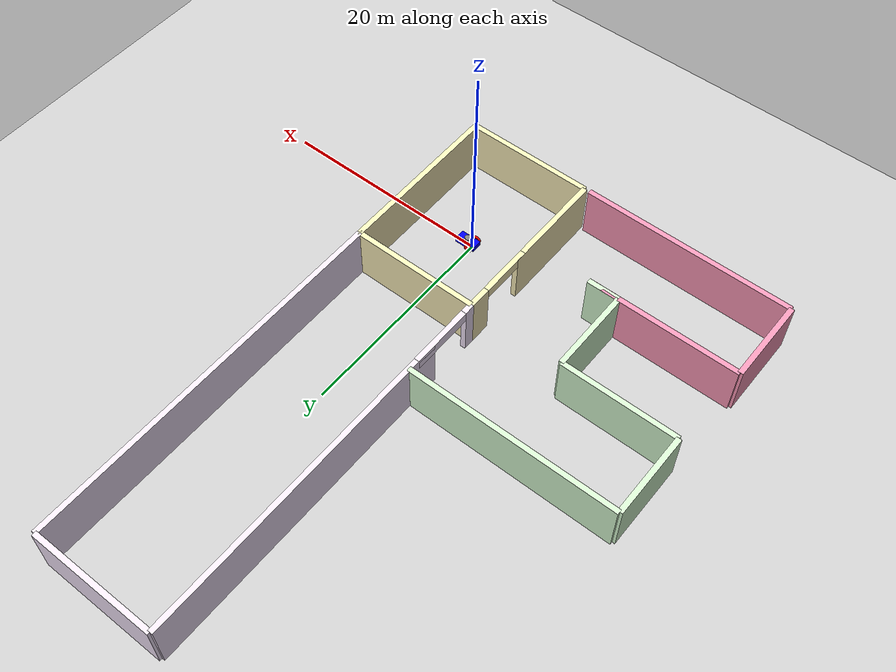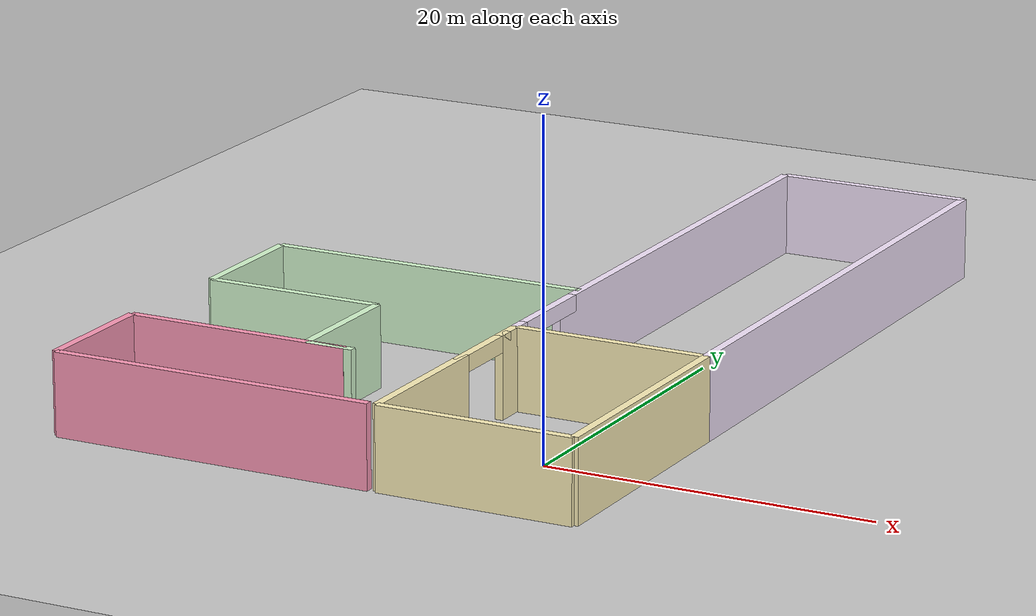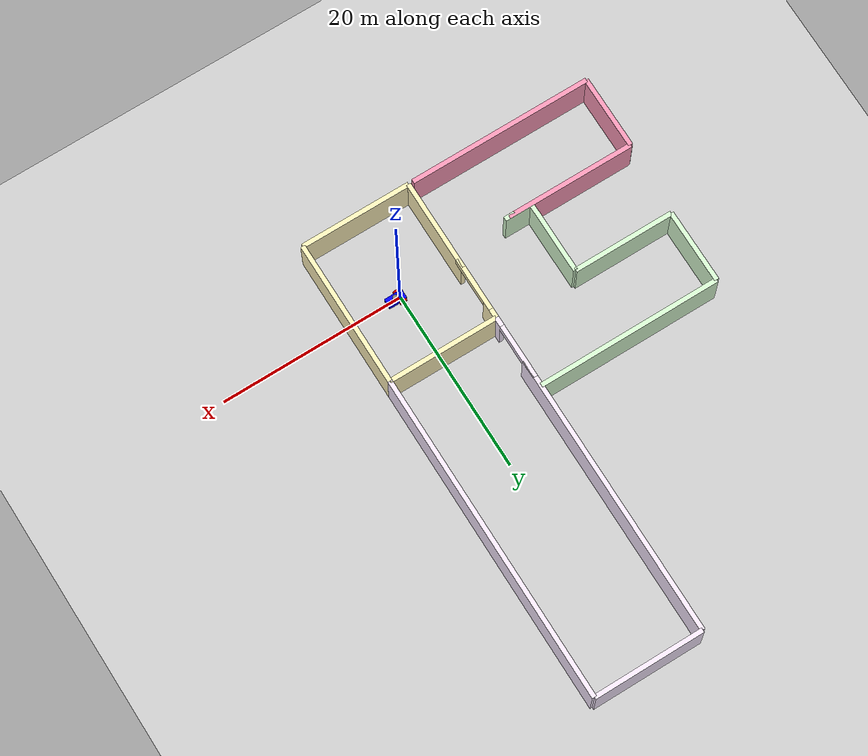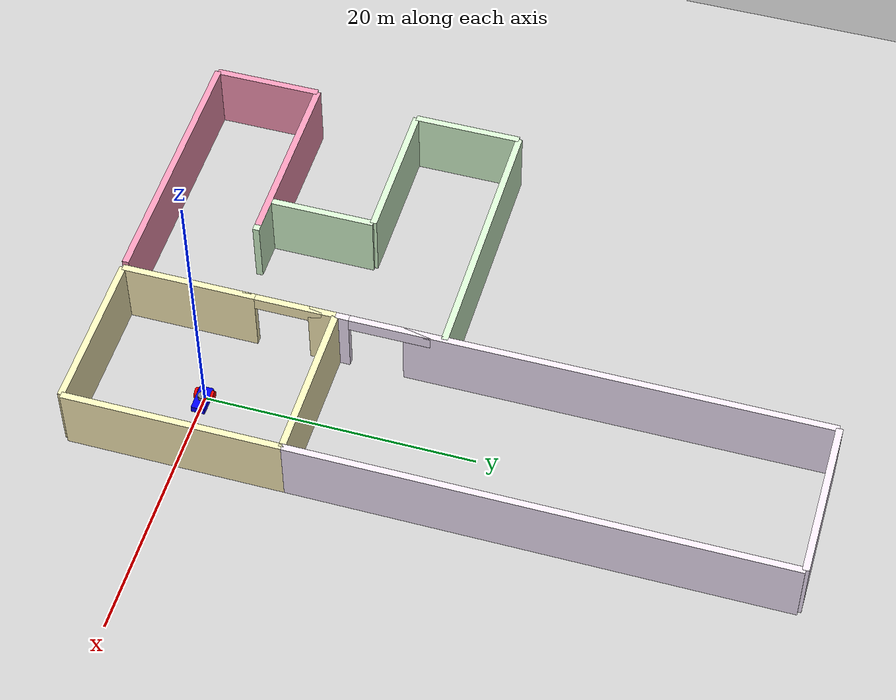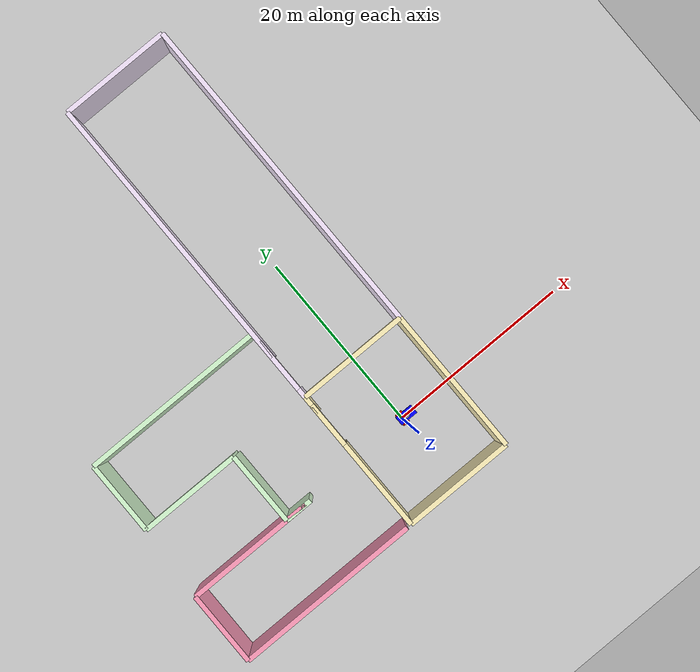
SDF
<?xml version="1.0" ?>
<sdf version="1.10">
    <world name="car_world">
        <physics name="1ms" type="ignored">
            <max_step_size>0.001</max_step_size>
            <real_time_factor>1.0</real_time_factor>
        </physics>
        <plugin
            filename="gz-sim-physics-system"
            name="gz::sim::systems::Physics">
        </plugin>
        <plugin
            filename="gz-sim-user-commands-system"
            name="gz::sim::systems::UserCommands">
        </plugin>
        <plugin
			filename="gz-sim-scene-broadcaster-system"
            name="gz::sim::systems::SceneBroadcaster">
        </plugin>

        <plugin
    		filename="gz-sim-sensors-system"
    		name="gz::sim::systems::Sensors">
    		<render_engine>ogre2</render_engine>
    	</plugin>

        <light type="directional" name="sun">
            <cast_shadows>false</cast_shadows>
            <pose>0 0 10 0 0 0</pose>
            <diffuse>0.8 0.8 0.8 1</diffuse>
            <specular>0.2 0.2 0.2 1</specular>
            <attenuation>
                <range>1000</range>
                <constant>0.9</constant>
                <linear>0.01</linear>
                <quadratic>0.001</quadratic>
            </attenuation>
            <direction>-0.5 0.1 -0.9</direction>
        </light>

        <model name="ground_plane">
            <static>true</static>
            <link name="link">
                <collision name="collision">
                <geometry>
                    <plane>
                    <normal>0 0 1</normal>
                    </plane>
                </geometry>
                </collision>
                <visual name="visual">
                <geometry>
                    <plane>
                    <normal>0 0 1</normal>
                    <size>1000 1000</size>
                    </plane>
                </geometry>
                <material>
                    <ambient>0.8 0.8 0.8 1</ambient>
                    <diffuse>0.8 0.8 0.8 1</diffuse>
                    <specular>0.8 0.8 0.8 1</specular>
                </material>
                </visual>
            </link>
        </model>
        <model name='vehicle_blue' canonical_link='chassis'>
    		<pose relative_to='world'>0 0 0 0 0 0</pose>
    		<link name='chassis'>
        		<pose relative_to='__model__'>0.5 0 0.4 0 0 0</pose>
        	    <inertial> <!--inertial properties of the link mass, inertia matix-->
        			<mass>1.14395</mass>
        			<inertia>
            			<ixx>0.095329</ixx>
            			<ixy>0</ixy>
            			<ixz>0</ixz>
            			<iyy>0.381317</iyy>
            			<iyz>0</iyz>
            			<izz>0.476646</izz>
        			</inertia>
    			</inertial>
    			<visual name='visual'>
        			<geometry>
            			<box>
                			<size>2.0 1.0 0.5</size>
            			</box>
        			</geometry>
        		<!--let's add color to our link-->
        			<material>
            			<ambient>0.0 0.0 1.0 1</ambient>
            			<diffuse>0.0 0.0 1.0 1</diffuse>
            			<specular>0.0 0.0 1.0 1</specular>
        			</material>
    			</visual>
    			<collision name='collision'>
            		<geometry>
                		<box>
                    		<size>2.0 1.0 0.5</size>
                		</box>
            		</geometry>
        		</collision>
    		</link>

    		<link name="lidar_housing">
    			<!-- Pozycja cylindra na dachu podwozia -->
    			<pose relative_to='chassis'>0 0 0.3 0 0 0</pose>

    			<inertial>
        			<mass>0.2</mass>
        			<inertia>
            			<ixx>0.02</ixx>
            			<ixy>0</ixy>
            			<ixz>0</ixz>
            			<iyy>0.02</iyy>
            			<iyz>0</iyz>
            			<izz>0.02</izz>
        			</inertia>
    			</inertial>

    			<visual name='lidar_cylinder'>
        			<geometry>
            			<cylinder>
                			<radius>0.3</radius>
                			<length>0.5</length>
            			</cylinder>
        			</geometry>
        			<material>
            			<ambient>0.5 0.5 0.5 1</ambient>
            			<diffuse>0.5 0.5 0.5 1</diffuse>
            			<specular>0.5 0.5 0.5 1</specular>
        			</material>
    			</visual>

    			<collision name='collision'>
        			<geometry>
            			<cylinder>
                			<radius>0.3</radius>
                			<length>0.5</length>
            			</cylinder>
        			</geometry>
    			</collision>

    			<!-- Zamontowany LIDAR -->
    			<sensor name='gpu_lidar' type='gpu_lidar'>
        			<pose>0 0 0.2 0 0 0</pose>
        			<topic>lidar</topic>
        			<update_rate>10</update_rate>
        			<ray>
            			<scan>
                			<horizontal>
                    			<samples>640</samples>
                    			<resolution>1</resolution>
                    			<min_angle>-3.141593</min_angle>
                    			<max_angle>3.141593</max_angle>
                			</horizontal>
                			<vertical>
                    			<samples>1</samples>
                    			<resolution>0.01</resolution>
                    			<min_angle>0</min_angle>
                    			<max_angle>0</max_angle>
                			</vertical>
            			</scan>
            			<range>
                			<min>0.08</min>
                			<max>10.0</max>
                			<resolution>0.01</resolution>
            			</range>
        			</ray>
        			<always_on>1</always_on>
        			<visualize>true</visualize>
    			</sensor>
			</link>

    		<!-- left wheel link -->
    		<link name='left_wheel'>
    			<pose relative_to="chassis">-0.5 0.6 0 -1.5707 0 0</pose>
    			<inertial>
        			<mass>1</mass>
        			<inertia>
            			<ixx>0.043333</ixx>
            			<ixy>0</ixy>
            			<ixz>0</ixz>
            			<iyy>0.043333</iyy>
            			<iyz>0</iyz>
            			<izz>0.08</izz>
        			</inertia>
    			</inertial>
    			<visual name='visual'>
        			<geometry>
            			<cylinder>
                			<radius>0.4</radius>
                			<length>0.2</length>
            			</cylinder>
        			</geometry>
        			<material>
            			<ambient>1.0 0.0 0.0 1</ambient>
            			<diffuse>1.0 0.0 0.0 1</diffuse>
            			<specular>1.0 0.0 0.0 1</specular>
        			</material>
    			</visual>
    			<collision name='collision'>
        			<geometry>
            			<cylinder>
                			<radius>0.4</radius>
                			<length>0.2</length>
            			</cylinder>
        			</geometry>
    			</collision>
			</link>

			<!--The same as left wheel but with different position-->
			<link name='right_wheel'>
    			<pose relative_to="chassis">-0.5 -0.6 0 -1.5707 0 0</pose>
    			<!--angles are in radian-->
    			<inertial>
        			<mass>1</mass>
        			<inertia>
            			<ixx>0.043333</ixx>
            			<ixy>0</ixy>
            			<ixz>0</ixz>
            			<iyy>0.043333</iyy>
            			<iyz>0</iyz>
            			<izz>0.08</izz>
        			</inertia>
    			</inertial>
    			<visual name='visual'>
        			<geometry>
            			<cylinder>
                			<radius>0.4</radius>
                			<length>0.2</length>
            			</cylinder>
        			</geometry>
        			<material>
            			<ambient>1.0 0.0 0.0 1</ambient>
            			<diffuse>1.0 0.0 0.0 1</diffuse>
            			<specular>1.0 0.0 0.0 1</specular>
        			</material>
    			</visual>
    			<collision name='collision'>
        			<geometry>
            			<cylinder>
                			<radius>0.4</radius>
                			<length>0.2</length>
            			</cylinder>
        			</geometry>
    			</collision>
			</link>

			<frame name="caster_frame" attached_to='chassis'>
    			<pose>0.8 0 -0.2 0 0 0</pose>
			</frame>

			<!--caster wheel-->
			<link name='caster'>
    			<pose relative_to='caster_frame'/>
    			<inertial>
        			<mass>1</mass>
        			<inertia>
            			<ixx>0.016</ixx>
            			<ixy>0</ixy>
            			<ixz>0</ixz>
            			<iyy>0.016</iyy>
            			<iyz>0</iyz>
            			<izz>0.016</izz>
        			</inertia>
    			</inertial>
    			<visual name='visual'>
        			<geometry>
            			<sphere>
                			<radius>0.2</radius>
            			</sphere>
        			</geometry>
        			<material>
            			<ambient>0.0 1 0.0 1</ambient>
            			<diffuse>0.0 1 0.0 1</diffuse>
            			<specular>0.0 1 0.0 1</specular>
        			</material>
    			</visual>
    			<collision name='collision'>
        			<geometry>
            			<sphere>
                			<radius>0.2</radius>
            			</sphere>
        			</geometry>
    			</collision>
			</link>

			<joint name='left_wheel_joint' type='revolute'>
    			<pose relative_to='left_wheel'/>
    			<parent>chassis</parent>
    			<child>left_wheel</child>
    			<axis>
        			<xyz expressed_in='__model__'>0 1 0</xyz>
        			<!--can be defined as any frame or even arbitrary frames-->
        			<limit>
            			<lower>-1.79769e+308</lower>    <!--negative infinity-->
            			<upper>1.79769e+308</upper>     <!--positive infinity-->
        			</limit>
    			</axis>
			</joint>

			<joint name='right_wheel_joint' type='revolute'>
    			<pose relative_to='right_wheel'/>
    			<parent>chassis</parent>
    			<child>right_wheel</child>
    			<axis>
        			<xyz expressed_in='__model__'>0 1 0</xyz>
        			<limit>
            			<lower>-1.79769e+308</lower>    <!--negative infinity-->
            			<upper>1.79769e+308</upper>     <!--positive infinity-->
        			</limit>
    			</axis>
			</joint>

			<joint name='caster_wheel' type='ball'>
    			<parent>chassis</parent>
    			<child>caster</child>
			</joint>

			<joint name="lidar_fixed_joint" type="fixed">
    			<parent>chassis</parent>
    			<child>lidar_housing</child>
    			<pose>0 0 0.9 0 0 0</pose>
			</joint>
			<plugin
    			filename="gz-sim-diff-drive-system"
    			name="gz::sim::systems::DiffDrive">
    			<left_joint>left_wheel_joint</left_joint>
    			<right_joint>right_wheel_joint</right_joint>
    			<wheel_separation>1.2</wheel_separation>
    			<wheel_radius>0.4</wheel_radius>
    			<odom_publish_frequency>1</odom_publish_frequency>
    			<topic>cmd_vel</topic>
			</plugin>

			<!-- Moving Forward-->
			<plugin filename="gz-sim-triggered-publisher-system"
        			name="gz::sim::systems::TriggeredPublisher">
    			<input type="gz.msgs.Int32" topic="/keyboard/keypress">
        			<match field="data">16777235</match>
    			</input>
    			<output type="gz.msgs.Twist" topic="/cmd_vel">
        			linear: {x: 0.5}, angular: {z: 0.0}
    			</output>
			</plugin>

						<!-- Moving Backward-->
			<plugin filename="gz-sim-triggered-publisher-system"
        			name="gz::sim::systems::TriggeredPublisher">
    			<input type="gz.msgs.Int32" topic="/keyboard/keypress">
        			<match field="data">16777237</match>
    			</input>
    			<output type="gz.msgs.Twist" topic="/cmd_vel">
        			linear: {x: -0.5}, angular: {z: 0.0}
    			</output>
			</plugin>

						<!-- Moving Left-->
			<plugin filename="gz-sim-triggered-publisher-system"
        			name="gz::sim::systems::TriggeredPublisher">
    			<input type="gz.msgs.Int32" topic="/keyboard/keypress">
        			<match field="data">16777234</match>
    			</input>
    			<output type="gz.msgs.Twist" topic="/cmd_vel">
        			linear: {x: 0.0}, angular: {z: 0.5}
    			</output>
			</plugin>

						<!-- Moving right-->
			<plugin filename="gz-sim-triggered-publisher-system"
        			name="gz::sim::systems::TriggeredPublisher">
    			<input type="gz.msgs.Int32" topic="/keyboard/keypress">
        			<match field="data">16777236</match>
    			</input>
    			<output type="gz.msgs.Twist" topic="/cmd_vel">
        			linear: {x: 0.0}, angular: {z: -0.5}
    			</output>
			</plugin>

			<!-- LIDAR CONFIG -->
			<frame name="lidar_frame" attached_to='lidar_housing'>
    			<pose>0.5 0.0 0.25 0.0 0.0 0.0</pose>
			</frame>
		</model>

		<!--POKOJ WAGON-->
		<model name='walls_p_wagon'>
    		<static>true</static>
    		<pose>0 0 2.5 0 0 0</pose>
    		<link name='dluga_sciana_1'>
        		<visual name='visual'>
            		<geometry>
                		<box>
                    		<size>0.5 36 5</size>
                		</box>
            		</geometry>
            		<material>
                		<ambient>0.969 0.910 1 1</ambient>
                		<diffuse>0.969 0.910 1 1</diffuse>
                		<specular>0.969 0.910 1 1</specular>
            		</material>
        		</visual>
        		<collision name='collision'>
            		<geometry>
                		<box>
                    		<size>0.5 36 5</size>
                		</box>
            		</geometry>
        		</collision>
				<pose>6 26 0 0 0 0</pose>
    		</link>

			<link name='dluga_sciana_2_fr_1'>
        		<visual name='visual'>
            		<geometry>
                		<box>
                    		<size>0.5 31 5</size>
                		</box>
            		</geometry>
            		<material>
                		<ambient>0.969 0.910 1 1</ambient>
                		<diffuse>0.969 0.910 1 1</diffuse>
                		<specular>0.969 0.910 1 1</specular>
            		</material>
        		</visual>
        		<collision name='collision'>
            		<geometry>
                		<box>
                    		<size>0.5 31 5</size>
                		</box>
            		</geometry>
        		</collision>
				<pose>-6 28.5 0 0 0 0</pose>
    		</link>

			<link name='dluga_sciana_2_fr_2'>
        		<visual name='visual'>
            		<geometry>
                		<box>
                    		<size>0.5 6 1</size>
                		</box>
            		</geometry>
            		<material>
                		<ambient>0.969 0.910 1 1</ambient>
                		<diffuse>0.969 0.910 1 1</diffuse>
                		<specular>0.969 0.910 1 1</specular>
            		</material>
        		</visual>
        		<collision name='collision'>
            		<geometry>
                		<box>
                    		<size>0.5 6 1</size>
                		</box>
            		</geometry>
        		</collision>
				<pose>-6 12 2 0 0 0</pose>
    		</link>

			<link name='dluga_sciana_2_fr_3'>
        		<visual name='visual'>
            		<geometry>
                		<box>
                    		<size>0.5 1 5</size>
                		</box>
            		</geometry>
            		<material>
                		<ambient>0.969 0.910 1 1</ambient>
                		<diffuse>0.969 0.910 1 1</diffuse>
                		<specular>0.969 0.910 1 1</specular>
            		</material>
        		</visual>
        		<collision name='collision'>
            		<geometry>
                		<box>
                    		<size>0.5 2 5</size>
                		</box>
            		</geometry>
        		</collision>
				<pose>-6 8.5 0 0 0 0</pose>
    		</link>

    		<link name='krotka_sciana_1'>
        		<visual name='visual'>
            		<geometry>
                		<box>
                    		<size>0.5 12 5</size>
                		</box>
            		</geometry>
            		<material>
                		<ambient>0.969 0.910 1 1</ambient>
                		<diffuse>0.969 0.910 1 1</diffuse>
                		<specular>0.969 0.910 1 1</specular>
            		</material>
        		</visual>
        		<collision name='collision'>
            		<geometry>
                		<box>
                    		<size>0.5 12 5</size>
                		</box>
            		</geometry>
        		</collision>
				<pose>0 44 0 0 0 1.57</pose>
    		</link>
		</model>

		<!-- scianka w malym pokoju z drzwiami-->
		<model name='wall_p_m_1'>
    		<static>true</static>
    		<pose>6 0 2.5 0 0 0</pose>
    		<link name='box'>
        		<visual name='visual'>
            		<geometry>
                		<box>
                    		<size>0.5 16 5</size>
                		</box>
            		</geometry>
            		<material>
                		<ambient>1 0.949 0.733 1</ambient>
                		<diffuse>1 0.949 0.733 1</diffuse>
                		<specular>1 0.949 0.733 1</specular>
            		</material>
        		</visual>
        		<collision name='collision'>
            		<geometry>
                		<box>
                    		<size>0.5 16 5</size>
                		</box>
            		</geometry>
        		</collision>
    		</link>
		</model>

		<!-- scianka w malym pokoju z drzwiami-->
		<model name='wall_p_m_2'>
    		<static>true</static>
    		<pose>-6 0 2.5 0 0 0</pose>
    		<link name='wall_fragment_1'>
        		<visual name='visual'>
            		<geometry>
                		<box>
                    		<size>0.5 10 5</size>
                		</box>
            		</geometry>
            		<material>
                		<ambient>1 0.949 0.733 1</ambient>
                		<diffuse>1 0.949 0.733 1</diffuse>
                		<specular>1 0.949 0.733 1</specular>
            		</material>
        		</visual>
        		<collision name='collision'>
            		<geometry>
                		<box>
                    		<size>0.5 10 5</size>
                		</box>
            		</geometry>
        		</collision>
				<pose>0 -3 0 0 0 0</pose>
    		</link>

			<link name='wall_fragment_2'>
        		<visual name='visual'>
            		<geometry>
                		<box>
                    		<size>0.5 6 1</size>
                		</box>
            		</geometry>
            		<material>
                		<ambient>1 0.949 0.733 1</ambient>
                		<diffuse>1 0.949 0.733 1</diffuse>
                		<specular>1 0.949 0.733 1</specular>
            		</material>
        		</visual>
        		<collision name='collision'>
            		<geometry>
                		<box>
                    		<size>0.5 6 1</size>
                		</box>
            		</geometry>
        		</collision>
				<pose>0 4 2 0 0 0</pose>
    		</link>

			<link name='wall_fragment_3'>
        		<visual name='visual'>
            		<geometry>
                		<box>
                    		<size>0.5 2 5</size>
                		</box>
            		</geometry>
            		<material>
                		<ambient>1 0.949 0.733 1</ambient>
                		<diffuse>1 0.949 0.733 1</diffuse>
                		<specular>1 0.949 0.733 1</specular>
            		</material>
        		</visual>
        		<collision name='collision'>
            		<geometry>
                		<box>
                    		<size>0.5 2 5</size>
                		</box>
            		</geometry>
        		</collision>
				<pose>0 7 0 0 0 0</pose>
    		</link>
		</model>

		<model name='wall_p_m_3'>
    		<static>true</static>
    		<pose>0 8 2.5 0 0 1.57</pose>
    		<link name='box'>
        		<visual name='visual'>
            		<geometry>
                		<box>
                    		<size>0.5 12 5</size>
                		</box>
            		</geometry>
            		<material>
                		<ambient>1 0.949 0.733 1</ambient>
                		<diffuse>1 0.949 0.733 1</diffuse>
                		<specular>1 0.949 0.733 1</specular>
            		</material>
        		</visual>
        		<collision name='collision'>
            		<geometry>
                		<box>
                    		<size>0.5 12 5</size>
                		</box>
            		</geometry>
        		</collision>
    		</link>
		</model>

		<model name='wall_p_m_4'>
    		<static>true</static>
    		<pose>0 -8 2.5 0 0 1.57</pose>
    		<link name='box'>
        		<visual name='visual'>
            		<geometry>
                		<box>
                    		<size>0.5 12 5</size>
                		</box>
            		</geometry>
            		<material>
                		<ambient>1 0.949 0.733 1</ambient>
                		<diffuse>1 0.949 0.733 1</diffuse>
                		<specular>1 0.949 0.733 1</specular>
            		</material>
        		</visual>
        		<collision name='collision'>
            		<geometry>
                		<box>
                    		<size>0.5 12 5</size>
                		</box>
            		</geometry>
        		</collision>
    		</link>
		</model>

		<model name='korytarz'>
    		<static>true</static>
			<pose>0 0 2.5 0 0 0</pose>
    		<link name='scianka_korytarz_salon'>
        		<visual name='visual'>
            		<geometry>
                		<box>
                    		<size>0.5 20 5</size>
                		</box>
            		</geometry>
            		<material>
                		<ambient>0.843 0.984 0.820 1.0</ambient>
                		<diffuse>0.843 0.984 0.820 1.0</diffuse>
                		<specular>0.843 0.984 0.820 1.0</specular>
            		</material>
        		</visual>
        		<collision name='collision'>
            		<geometry>
                		<box>
                    		<size>0.5 20 5</size>
                		</box>
            		</geometry>
        		</collision>
				<pose>-16 16 0 0 0 1.57</pose>
    		</link>

			<link name='scianka_korytarz_wyjscie'>
        		<visual name='visual'>
            		<geometry>
                		<box>
                    		<size>0.5 8 5</size>
                		</box>
            		</geometry>
            		<material>
                		<ambient>0.843 0.984 0.820 1.0</ambient>
                		<diffuse>0.843 0.984 0.820 1.0</diffuse>
                		<specular>0.843 0.984 0.820 1.0</specular>
            		</material>
        		</visual>
        		<collision name='collision'>
            		<geometry>
                		<box>
                    		<size>0.5 8 5</size>
                		</box>
            		</geometry>
        		</collision>
				<pose>-26 12 0 0 0 0</pose>
    		</link>

			<link name='scianka_korytarz_lazienka_1'>
        		<visual name='visual'>
            		<geometry>
                		<box>
                    		<size>0.5 11 5</size>
                		</box>
            		</geometry>
            		<material>
                		<ambient>0.843 0.984 0.820 1.0</ambient>
                		<diffuse>0.843 0.984 0.820 1.0</diffuse>
                		<specular>0.843 0.984 0.820 1.0</specular>
            		</material>
        		</visual>
        		<collision name='collision'>
            		<geometry>
                		<box>
                    		<size>0.5 11 5</size>
                		</box>
            		</geometry>
        		</collision>
				<pose>-20.5 8 0 0 0 1.57</pose>
    		</link>

			<link name='scianka_korytarz_lazienka_2'>
        		<visual name='visual'>
            		<geometry>
                		<box>
                    		<size>0.5 8 5</size>
                		</box>
            		</geometry>
            		<material>
                		<ambient>0.843 0.984 0.820 1.0</ambient>
                		<diffuse>0.843 0.984 0.820 1.0</diffuse>
                		<specular>0.843 0.984 0.820 1.0</specular>
            		</material>
        		</visual>
        		<collision name='collision'>
            		<geometry>
                		<box>
                    		<size>0.5 8 5</size>
                		</box>
            		</geometry>
        		</collision>
				<pose>-15 4 0 0 0 0</pose>
    		</link>

			<link name='scianka_korytarz_wneka_kuchnia'>
        		<visual name='visual'>
            		<geometry>
                		<box>
                    		<size>0.5 3 5</size>
                		</box>
            		</geometry>
            		<material>
                		<ambient>0.843 0.984 0.820 1.0</ambient>
                		<diffuse>0.843 0.984 0.820 1.0</diffuse>
                		<specular>0.843 0.984 0.820 1.0</specular>
            		</material>
        		</visual>
        		<collision name='collision'>
            		<geometry>
                		<box>
                    		<size>0.5 3 5</size>
                		</box>
            		</geometry>
        		</collision>
				<pose>-13.5 0 0 0 0 1.57</pose>
    		</link>
		</model>

		<model name='kuchnia'>
    		<static>true</static>
    		<pose>0 0 2.5 0 0 0</pose>
    		<link name='sciana_kuchnia_lazienka'>
        		<visual name='visual'>
            		<geometry>
                		<box>
                    		<size>0.5 14 5</size>
                		</box>
            		</geometry>
            		<material>
                		<ambient>0.996 0.604 0.725 1.0</ambient>
                		<diffuse>0.996 0.604 0.725 1.0</diffuse>
                		<specular>0.996 0.604 0.725 1.0</specular>
            		</material>
        		</visual>
        		<collision name='collision'>
            		<geometry>
                		<box>
                    		<size>0.5 14 5</size>
                		</box>
            		</geometry>
        		</collision>
				<pose>-19.5 0 0 0 0 1.57</pose>
    		</link>

			<link name='sciana_kuchnia_piony'>
        		<visual name='visual'>
            		<geometry>
                		<box>
                    		<size>0.5 8 5</size>
                		</box>
            		</geometry>
            		<material>
                		<ambient>0.996 0.604 0.725 1.0</ambient>
                		<diffuse>0.996 0.604 0.725 1.0</diffuse>
                		<specular>0.996 0.604 0.725 1.0</specular>
            		</material>
        		</visual>
        		<collision name='collision'>
            		<geometry>
                		<box>
                    		<size>0.5 8 5</size>
                		</box>
            		</geometry>
        		</collision>
				<pose>-26.5 -4 0 0 0 0</pose>
    		</link>

			<link name='sciana_kuchnia_okna'>
        		<visual name='visual'>
            		<geometry>
                		<box>
                    		<size>0.5 20 5</size>
                		</box>
            		</geometry>
            		<material>
                		<ambient>0.996 0.604 0.725 1.0</ambient>
                		<diffuse>0.996 0.604 0.725 1.0</diffuse>
                		<specular>0.996 0.604 0.725 1.0</specular>
            		</material>
        		</visual>
        		<collision name='collision'>
            		<geometry>
                		<box>
                    		<size>0.5 20 5</size>
                		</box>
            		</geometry>
        		</collision>
				<pose>-16.5 -8 0 0 0 1.57</pose>
    		</link>

		</model>

    </world>
</sdf>
